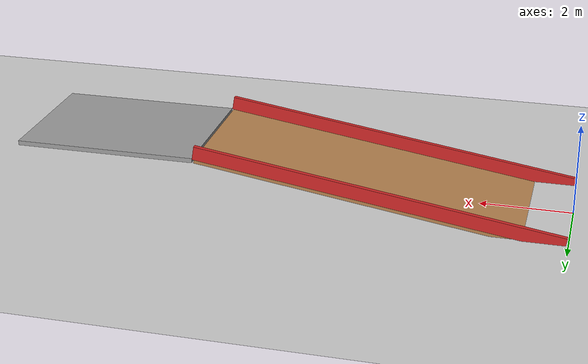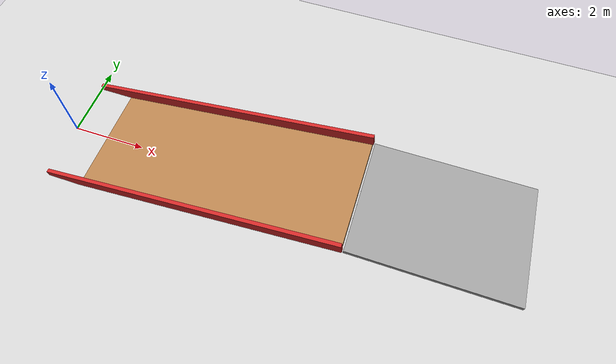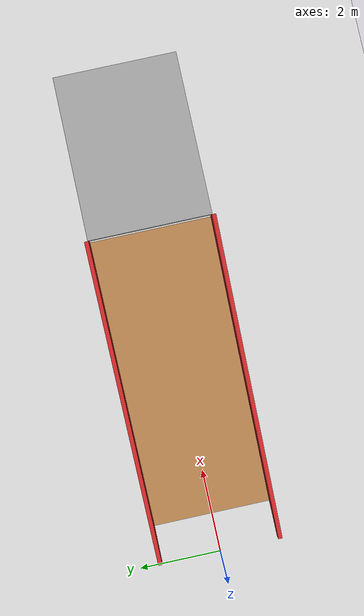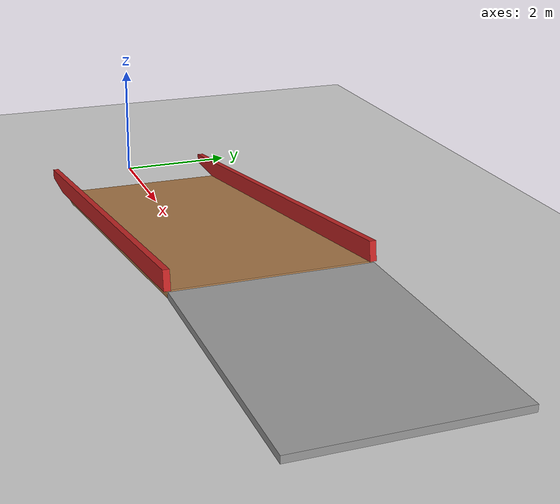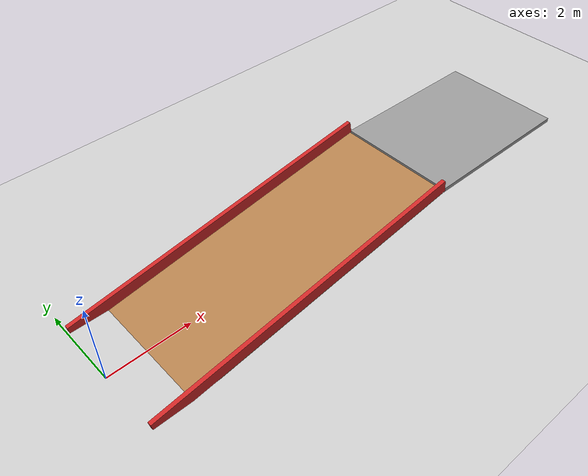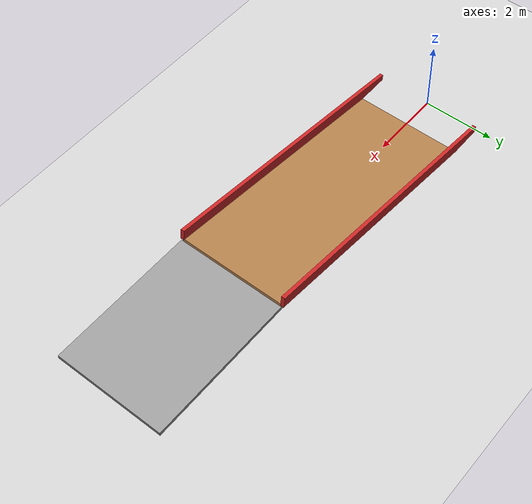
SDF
<?xml version="1.0" ?>
<sdf version="1.6">
  <world name="slope_world">
    <!-- A global light source -->
    <include>
      <uri>model://sun</uri>
    </include>
    <!-- A ground plane -->
    <include>
      <uri>model://ground_plane</uri>
    </include>

    <!-- 爬坡测试场地 (Ramp/Slope) -->
    <model name="ramp">
      <static>true</static>
      <!-- x y z roll pitch yaw -->
      <!-- pitch = -0.15 表示大约 8.5 度的坡度 -->
      <pose>4 0 0.4 0 -0.15 0</pose>
      <link name="link">
        <collision name="collision">
          <geometry>
            <box>
              <size>8 3 0.1</size>
            </box>
          </geometry>
          <!-- 增加摩擦力防止打滑 -->
          <surface>
            <friction>
              <ode>
                <mu>100.0</mu>
                <mu2>50.0</mu2>
              </ode>
            </friction>
          </surface>
        </collision>
        <visual name="visual">
          <geometry>
            <box>
              <size>8 3 0.1</size>
            </box>
          </geometry>
          <material>
            <script>
              <uri>file://media/materials/scripts/gazebo.material</uri>
              <name>Gazebo/Wood</name>
            </script>
          </material>
        </visual>
      </link>
    </model>

    <!-- 坡顶平台 -->
    <model name="platform">
      <static>true</static>
      <pose>10 0 1.0 0 0 0</pose>
      <link name="link">
        <collision name="collision">
          <geometry>
            <box>
              <size>4 3 0.1</size>
            </box>
          </geometry>
          <surface>
            <friction>
              <ode>
                <mu>100.0</mu>
                <mu2>50.0</mu2>
              </ode>
            </friction>
          </surface>
        </collision>
        <visual name="visual">
          <geometry>
            <box>
              <size>4 3 0.1</size>
            </box>
          </geometry>
          <material>
            <script>
              <uri>file://media/materials/scripts/gazebo.material</uri>
              <name>Gazebo/Grey</name>
            </script>
          </material>
        </visual>
      </link>
    </model>

    <!-- 防止掉落的护栏 -->
    <model name="wall_1">
      <static>true</static>
      <pose>4 1.5 0.6 0 -0.15 0</pose>
      <link name="link">
        <collision name="collision">
          <geometry>
            <box>
              <size>8 0.1 0.3</size>
            </box>
          </geometry>
        </collision>
        <visual name="visual">
          <geometry>
            <box>
              <size>8 0.1 0.3</size>
            </box>
          </geometry>
          <material>
            <script>
              <uri>file://media/materials/scripts/gazebo.material</uri>
              <name>Gazebo/Red</name>
            </script>
          </material>
        </visual>
      </link>
    </model>

    <model name="wall_2">
      <static>true</static>
      <pose>4 -1.5 0.6 0 -0.15 0</pose>
      <link name="link">
        <collision name="collision">
          <geometry>
            <box>
              <size>8 0.1 0.3</size>
            </box>
          </geometry>
        </collision>
        <visual name="visual">
          <geometry>
            <box>
              <size>8 0.1 0.3</size>
            </box>
          </geometry>
          <material>
            <script>
              <uri>file://media/materials/scripts/gazebo.material</uri>
              <name>Gazebo/Red</name>
            </script>
          </material>
        </visual>
      </link>
    </model>

  </world>
</sdf>
